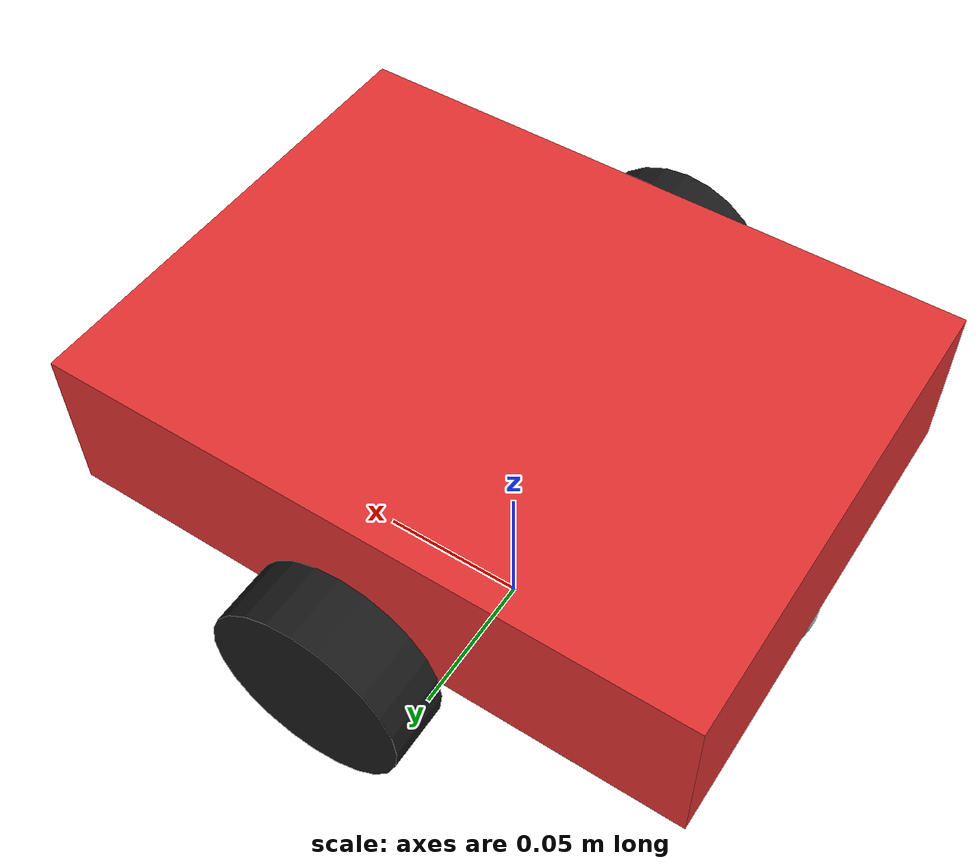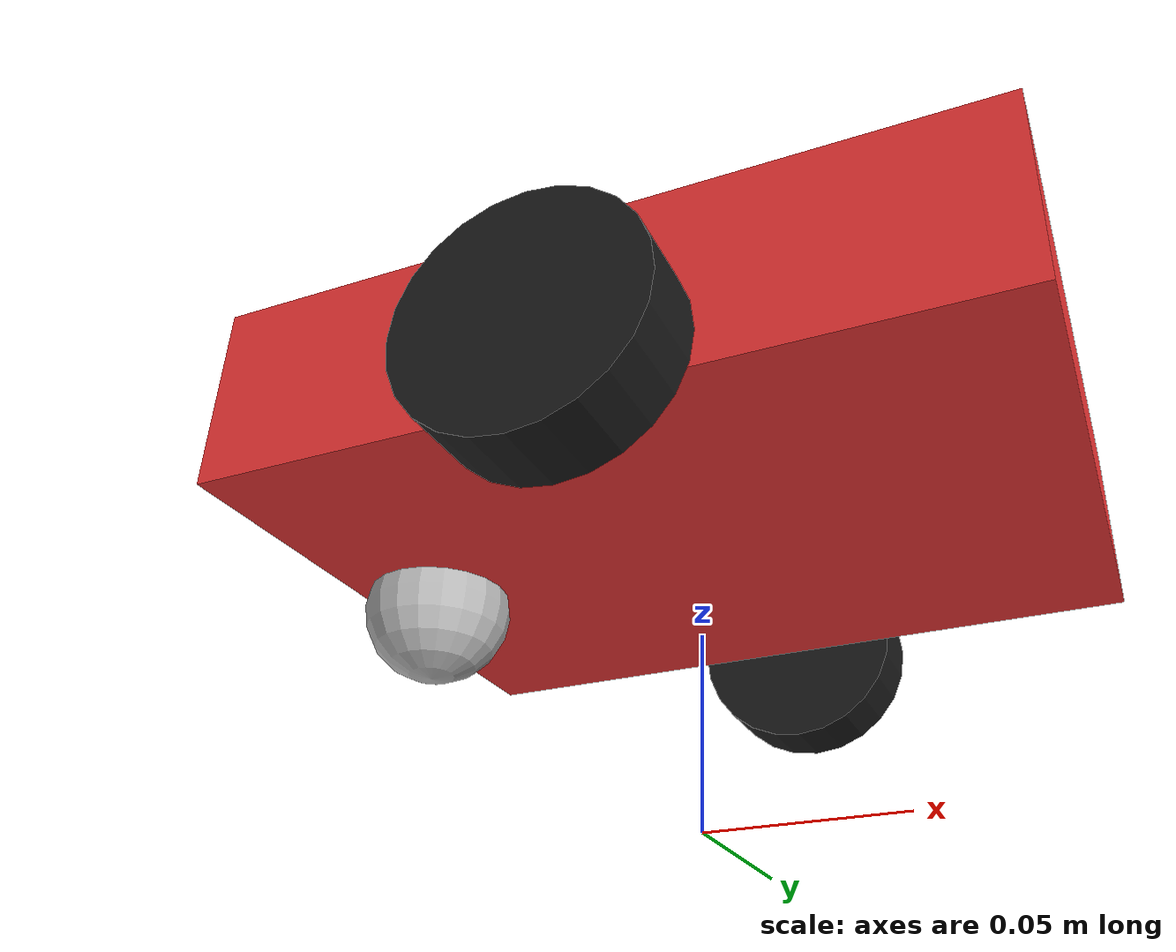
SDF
<?xml version="1.0"?>
<!-- Differential-drive car with three ray (lidar-style) distance sensors and an IMU. -->
<sdf version="1.8">
  <model name="car">
    <pose>0 0 0.05 0 0 0</pose>

    <!-- Chassis -->
    <link name="chassis">
      <pose>0 0 0.05 0 0 0</pose>
      <inertial>
        <mass>1.0</mass>
        <inertia><ixx>0.01</ixx><iyy>0.01</iyy><izz>0.01</izz><ixy>0</ixy><ixz>0</ixz><iyz>0</iyz></inertia>
      </inertial>
      <collision name="collision"><geometry><box><size>0.2 0.15 0.05</size></box></geometry></collision>
      <visual name="visual">
        <geometry><box><size>0.2 0.15 0.05</size></box></geometry>
        <material><diffuse>0.9 0.2 0.2 1</diffuse></material>
      </visual>

      <!-- Distance sensors: name maps to app/config.py SENSOR_NAMES -->
      <sensor name="front" type="gpu_lidar">
        <pose>0.1 0 0.05 0 0 0</pose>
        <update_rate>10</update_rate>
        <topic>car/sensors/front</topic>
        <lidar><scan><horizontal><samples>1</samples><resolution>1</resolution><min_angle>0</min_angle><max_angle>0</max_angle></horizontal></scan>
          <range><min>0.02</min><max>2.0</max><resolution>0.01</resolution></range></lidar>
      </sensor>
      <sensor name="front_left" type="gpu_lidar">
        <pose>0.1 0.05 0.05 0 0 0.785</pose>
        <update_rate>10</update_rate>
        <topic>car/sensors/front_left</topic>
        <lidar><scan><horizontal><samples>1</samples><resolution>1</resolution><min_angle>0</min_angle><max_angle>0</max_angle></horizontal></scan>
          <range><min>0.02</min><max>2.0</max><resolution>0.01</resolution></range></lidar>
      </sensor>
      <sensor name="front_right" type="gpu_lidar">
        <pose>0.1 -0.05 0.05 0 0 -0.785</pose>
        <update_rate>10</update_rate>
        <topic>car/sensors/front_right</topic>
        <lidar><scan><horizontal><samples>1</samples><resolution>1</resolution><min_angle>0</min_angle><max_angle>0</max_angle></horizontal></scan>
          <range><min>0.02</min><max>2.0</max><resolution>0.01</resolution></range></lidar>
      </sensor>

      <!-- Inertial measurement unit: 6-axis (accel + gyro), maps to app IMU features -->
      <sensor name="imu" type="imu">
        <pose>0 0 0.05 0 0 0</pose>
        <always_on>1</always_on>
        <update_rate>50</update_rate>
        <topic>car/imu</topic>
      </sensor>
    </link>

    <!-- Wheels -->
    <link name="left_wheel">
      <pose>0 0.09 0.03 -1.5707 0 0</pose>
      <inertial><mass>0.1</mass><inertia><ixx>0.001</ixx><iyy>0.001</iyy><izz>0.001</izz><ixy>0</ixy><ixz>0</ixz><iyz>0</iyz></inertia></inertial>
      <collision name="collision"><geometry><cylinder><radius>0.03</radius><length>0.02</length></cylinder></geometry></collision>
      <visual name="visual"><geometry><cylinder><radius>0.03</radius><length>0.02</length></cylinder></geometry><material><diffuse>0.1 0.1 0.1 1</diffuse></material></visual>
    </link>
    <link name="right_wheel">
      <pose>0 -0.09 0.03 -1.5707 0 0</pose>
      <inertial><mass>0.1</mass><inertia><ixx>0.001</ixx><iyy>0.001</iyy><izz>0.001</izz><ixy>0</ixy><ixz>0</ixz><iyz>0</iyz></inertia></inertial>
      <collision name="collision"><geometry><cylinder><radius>0.03</radius><length>0.02</length></cylinder></geometry></collision>
      <visual name="visual"><geometry><cylinder><radius>0.03</radius><length>0.02</length></cylinder></geometry><material><diffuse>0.1 0.1 0.1 1</diffuse></material></visual>
    </link>
    <!-- Passive caster -->
    <link name="caster">
      <pose>-0.08 0 0.02 0 0 0</pose>
      <inertial><mass>0.05</mass><inertia><ixx>0.0001</ixx><iyy>0.0001</iyy><izz>0.0001</izz><ixy>0</ixy><ixz>0</ixz><iyz>0</iyz></inertia></inertial>
      <collision name="collision"><geometry><sphere><radius>0.02</radius></sphere></geometry></collision>
      <visual name="visual"><geometry><sphere><radius>0.02</radius></sphere></geometry></visual>
    </link>

    <joint name="left_wheel_joint" type="revolute">
      <parent>chassis</parent><child>left_wheel</child>
      <!-- Axis expressed in the model frame so the wheel rolls about the
           lateral (Y) axis instead of spinning about itself. -->
      <axis><xyz expressed_in="__model__">0 1 0</xyz></axis>
    </joint>
    <joint name="right_wheel_joint" type="revolute">
      <parent>chassis</parent><child>right_wheel</child>
      <axis><xyz expressed_in="__model__">0 1 0</xyz></axis>
    </joint>
    <joint name="caster_joint" type="ball">
      <parent>chassis</parent><child>caster</child>
    </joint>

    <!-- Differential drive: subscribes to /cmd_vel -->
    <plugin filename="gz-sim-diff-drive-system" name="gz::sim::systems::DiffDrive">
      <left_joint>left_wheel_joint</left_joint>
      <right_joint>right_wheel_joint</right_joint>
      <wheel_separation>0.18</wheel_separation>
      <wheel_radius>0.03</wheel_radius>
      <topic>cmd_vel</topic>
      <odom_topic>odom</odom_topic>
    </plugin>
  </model>
</sdf>
